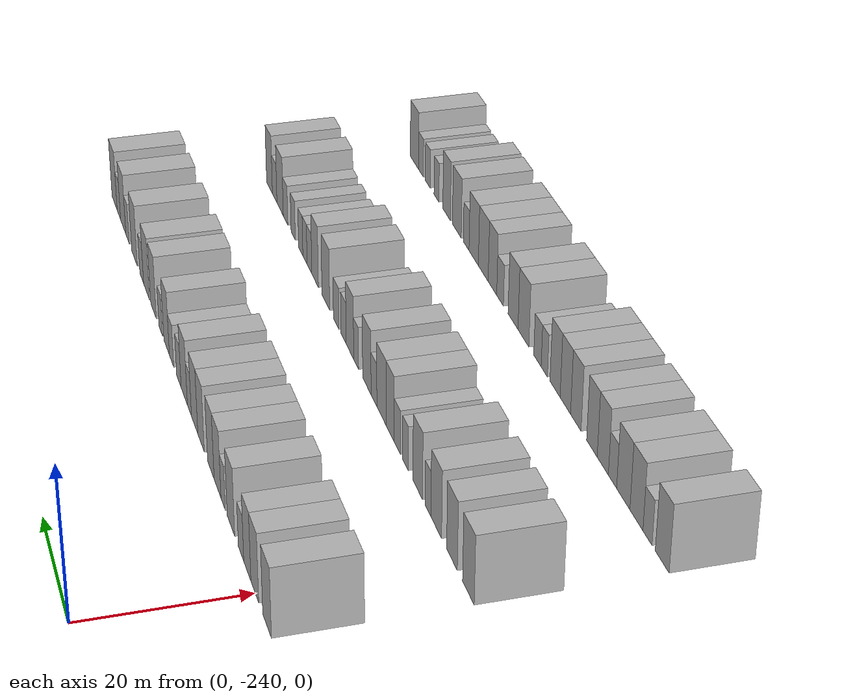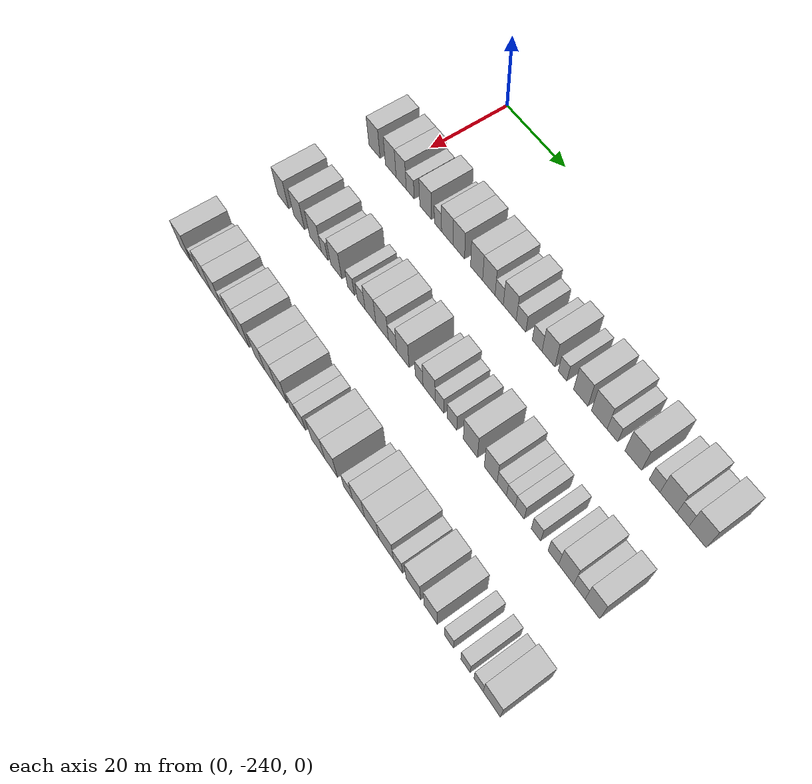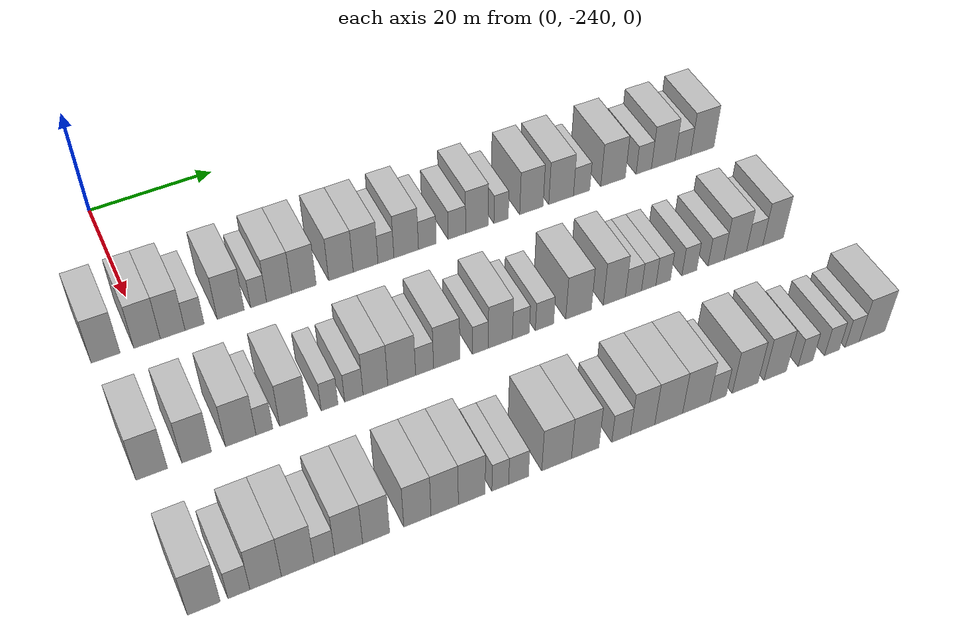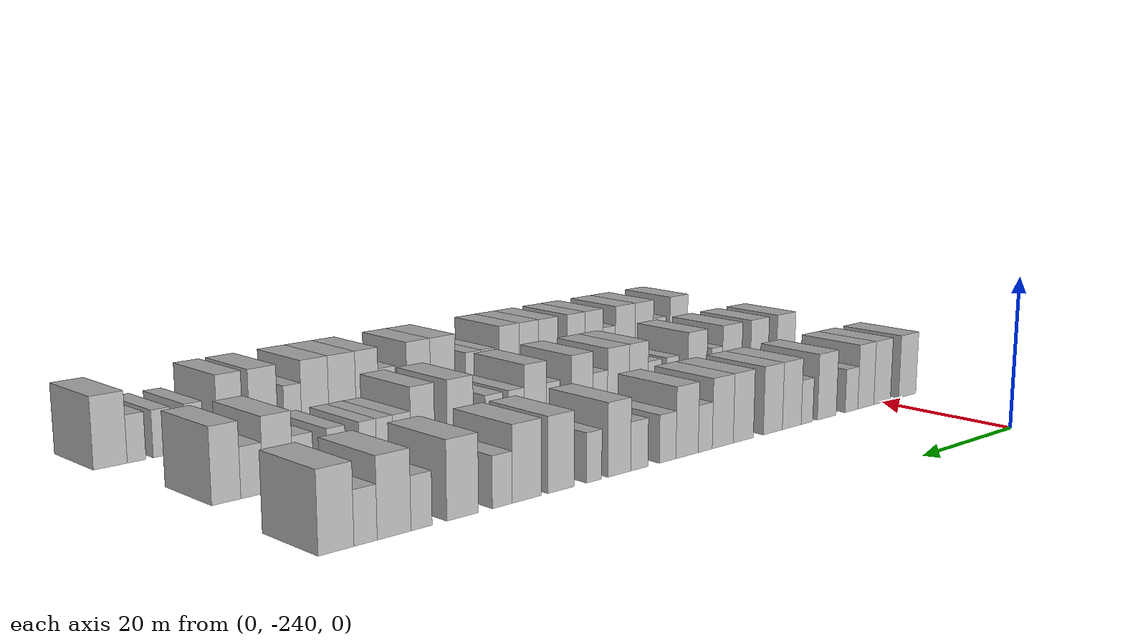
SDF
<sdf version="1.6">
 <world name="default">
  <model name="building_1">
   <static>1</static>
   <pose>25.0000 -245.8805 0 0.000000 0.000000 0.000000</pose>
   <link name="link">
    <pose>0 0 4.50 0 0 0</pose>
    <collision name="collision"><geometry><box><size>10.0000 4.2390 9.0000</size></box></geometry></collision>
    <visual name="visual">
     <cast_shadows>0</cast_shadows>
     <geometry><box><size>10.0000 4.2390 9.0000</size></box></geometry>
     <material>
      <script>
       <uri>model://HANNAS_wall/materials/scripts</uri>
       <uri>model://HANNAS_wall/materials/textures</uri>
       <name>vrc/HANNAS_wall</name>
      </script>
     </material>
    </visual>
   </link>
  </model>
  <model name="building_2">
   <static>1</static>
   <pose>25.0000 -239.7748 0 0.000000 0.000000 0.000000</pose>
   <link name="link">
    <pose>0 0 4.50 0 0 0</pose>
    <collision name="collision"><geometry><box><size>10.0000 3.9724 9.0000</size></box></geometry></collision>
    <visual name="visual">
     <cast_shadows>0</cast_shadows>
     <geometry><box><size>10.0000 3.9724 9.0000</size></box></geometry>
     <material>
      <script>
       <uri>model://HANNAS_wall/materials/scripts</uri>
       <uri>model://HANNAS_wall/materials/textures</uri>
       <name>vrc/HANNAS_wall</name>
      </script>
     </material>
    </visual>
   </link>
  </model>
  <model name="building_3">
   <static>1</static>
   <pose>25.0000 -235.9279 0 0.000000 0.000000 0.000000</pose>
   <link name="link">
    <pose>0 0 4.50 0 0 0</pose>
    <collision name="collision"><geometry><box><size>10.0000 3.7213 9.0000</size></box></geometry></collision>
    <visual name="visual">
     <cast_shadows>0</cast_shadows>
     <geometry><box><size>10.0000 3.7213 9.0000</size></box></geometry>
     <material>
      <script>
       <uri>model://HANNAS_wall/materials/scripts</uri>
       <uri>model://HANNAS_wall/materials/textures</uri>
       <name>vrc/HANNAS_wall</name>
      </script>
     </material>
    </visual>
   </link>
  </model>
  <model name="building_4">
   <static>1</static>
   <pose>25.0000 -232.6269 0 0.000000 0.000000 0.000000</pose>
   <link name="link">
    <pose>0 0 3.00 0 0 0</pose>
    <collision name="collision"><geometry><box><size>10.0000 2.8807 6.0000</size></box></geometry></collision>
    <visual name="visual">
     <cast_shadows>0</cast_shadows>
     <geometry><box><size>10.0000 2.8807 6.0000</size></box></geometry>
     <material>
      <script>
       <uri>model://HANNAS_wall/materials/scripts</uri>
       <uri>model://HANNAS_wall/materials/textures</uri>
       <name>vrc/HANNAS_wall</name>
      </script>
     </material>
    </visual>
   </link>
  </model>
  <model name="building_5">
   <static>1</static>
   <pose>25.0000 -227.1086 0 0.000000 0.000000 0.000000</pose>
   <link name="link">
    <pose>0 0 4.50 0 0 0</pose>
    <collision name="collision"><geometry><box><size>10.0000 4.1559 9.0000</size></box></geometry></collision>
    <visual name="visual">
     <cast_shadows>0</cast_shadows>
     <geometry><box><size>10.0000 4.1559 9.0000</size></box></geometry>
     <material>
      <script>
       <uri>model://HANNAS_wall/materials/scripts</uri>
       <uri>model://HANNAS_wall/materials/textures</uri>
       <name>vrc/HANNAS_wall</name>
      </script>
     </material>
    </visual>
   </link>
  </model>
  <model name="building_6">
   <static>1</static>
   <pose>25.0000 -222.7845 0 0.000000 0.000000 0.000000</pose>
   <link name="link">
    <pose>0 0 3.00 0 0 0</pose>
    <collision name="collision"><geometry><box><size>10.0000 2.4924 6.0000</size></box></geometry></collision>
    <visual name="visual">
     <cast_shadows>0</cast_shadows>
     <geometry><box><size>10.0000 2.4924 6.0000</size></box></geometry>
     <material>
      <script>
       <uri>model://HANNAS_wall/materials/scripts</uri>
       <uri>model://HANNAS_wall/materials/textures</uri>
       <name>vrc/HANNAS_wall</name>
      </script>
     </material>
    </visual>
   </link>
  </model>
  <model name="building_7">
   <static>1</static>
   <pose>25.0000 -219.5616 0 0.000000 0.000000 0.000000</pose>
   <link name="link">
    <pose>0 0 4.50 0 0 0</pose>
    <collision name="collision"><geometry><box><size>10.0000 3.9534 9.0000</size></box></geometry></collision>
    <visual name="visual">
     <cast_shadows>0</cast_shadows>
     <geometry><box><size>10.0000 3.9534 9.0000</size></box></geometry>
     <material>
      <script>
       <uri>model://HANNAS_wall/materials/scripts</uri>
       <uri>model://HANNAS_wall/materials/textures</uri>
       <name>vrc/HANNAS_wall</name>
      </script>
     </material>
    </visual>
   </link>
  </model>
  <model name="building_8">
   <static>1</static>
   <pose>25.0000 -215.6390 0 0.000000 0.000000 0.000000</pose>
   <link name="link">
    <pose>0 0 4.50 0 0 0</pose>
    <collision name="collision"><geometry><box><size>10.0000 3.8917 9.0000</size></box></geometry></collision>
    <visual name="visual">
     <cast_shadows>0</cast_shadows>
     <geometry><box><size>10.0000 3.8917 9.0000</size></box></geometry>
     <material>
      <script>
       <uri>model://HANNAS_wall/materials/scripts</uri>
       <uri>model://HANNAS_wall/materials/textures</uri>
       <name>vrc/HANNAS_wall</name>
      </script>
     </material>
    </visual>
   </link>
  </model>
  <model name="building_9">
   <static>1</static>
   <pose>25.0000 -209.7073 0 0.000000 0.000000 0.000000</pose>
   <link name="link">
    <pose>0 0 4.50 0 0 0</pose>
    <collision name="collision"><geometry><box><size>10.0000 3.9717 9.0000</size></box></geometry></collision>
    <visual name="visual">
     <cast_shadows>0</cast_shadows>
     <geometry><box><size>10.0000 3.9717 9.0000</size></box></geometry>
     <material>
      <script>
       <uri>model://HANNAS_wall/materials/scripts</uri>
       <uri>model://HANNAS_wall/materials/textures</uri>
       <name>vrc/HANNAS_wall</name>
      </script>
     </material>
    </visual>
   </link>
  </model>
  <model name="building_10">
   <static>1</static>
   <pose>25.0000 -205.7023 0 0.000000 0.000000 0.000000</pose>
   <link name="link">
    <pose>0 0 4.50 0 0 0</pose>
    <collision name="collision"><geometry><box><size>10.0000 4.0384 9.0000</size></box></geometry></collision>
    <visual name="visual">
     <cast_shadows>0</cast_shadows>
     <geometry><box><size>10.0000 4.0384 9.0000</size></box></geometry>
     <material>
      <script>
       <uri>model://HANNAS_wall/materials/scripts</uri>
       <uri>model://HANNAS_wall/materials/textures</uri>
       <name>vrc/HANNAS_wall</name>
      </script>
     </material>
    </visual>
   </link>
  </model>
  <model name="building_11">
   <static>1</static>
   <pose>25.0000 -202.3700 0 0.000000 0.000000 0.000000</pose>
   <link name="link">
    <pose>0 0 3.00 0 0 0</pose>
    <collision name="collision"><geometry><box><size>10.0000 2.6262 6.0000</size></box></geometry></collision>
    <visual name="visual">
     <cast_shadows>0</cast_shadows>
     <geometry><box><size>10.0000 2.6262 6.0000</size></box></geometry>
     <material>
      <script>
       <uri>model://HANNAS_wall/materials/scripts</uri>
       <uri>model://HANNAS_wall/materials/textures</uri>
       <name>vrc/HANNAS_wall</name>
      </script>
     </material>
    </visual>
   </link>
  </model>
  <model name="building_12">
   <static>1</static>
   <pose>25.0000 -199.0127 0 0.000000 0.000000 0.000000</pose>
   <link name="link">
    <pose>0 0 4.50 0 0 0</pose>
    <collision name="collision"><geometry><box><size>10.0000 4.0882 9.0000</size></box></geometry></collision>
    <visual name="visual">
     <cast_shadows>0</cast_shadows>
     <geometry><box><size>10.0000 4.0882 9.0000</size></box></geometry>
     <material>
      <script>
       <uri>model://HANNAS_wall/materials/scripts</uri>
       <uri>model://HANNAS_wall/materials/textures</uri>
       <name>vrc/HANNAS_wall</name>
      </script>
     </material>
    </visual>
   </link>
  </model>
  <model name="building_13">
   <static>1</static>
   <pose>25.0000 -195.4758 0 0.000000 0.000000 0.000000</pose>
   <link name="link">
    <pose>0 0 3.00 0 0 0</pose>
    <collision name="collision"><geometry><box><size>10.0000 2.9857 6.0000</size></box></geometry></collision>
    <visual name="visual">
     <cast_shadows>0</cast_shadows>
     <geometry><box><size>10.0000 2.9857 6.0000</size></box></geometry>
     <material>
      <script>
       <uri>model://HANNAS_wall/materials/scripts</uri>
       <uri>model://HANNAS_wall/materials/textures</uri>
       <name>vrc/HANNAS_wall</name>
      </script>
     </material>
    </visual>
   </link>
  </model>
  <model name="building_14">
   <static>1</static>
   <pose>25.0000 -190.4955 0 0.000000 0.000000 0.000000</pose>
   <link name="link">
    <pose>0 0 3.00 0 0 0</pose>
    <collision name="collision"><geometry><box><size>10.0000 2.9749 6.0000</size></box></geometry></collision>
    <visual name="visual">
     <cast_shadows>0</cast_shadows>
     <geometry><box><size>10.0000 2.9749 6.0000</size></box></geometry>
     <material>
      <script>
       <uri>model://HANNAS_wall/materials/scripts</uri>
       <uri>model://HANNAS_wall/materials/textures</uri>
       <name>vrc/HANNAS_wall</name>
      </script>
     </material>
    </visual>
   </link>
  </model>
  <model name="building_15">
   <static>1</static>
   <pose>25.0000 -187.0728 0 0.000000 0.000000 0.000000</pose>
   <link name="link">
    <pose>0 0 4.50 0 0 0</pose>
    <collision name="collision"><geometry><box><size>10.0000 3.8704 9.0000</size></box></geometry></collision>
    <visual name="visual">
     <cast_shadows>0</cast_shadows>
     <geometry><box><size>10.0000 3.8704 9.0000</size></box></geometry>
     <material>
      <script>
       <uri>model://HANNAS_wall/materials/scripts</uri>
       <uri>model://HANNAS_wall/materials/textures</uri>
       <name>vrc/HANNAS_wall</name>
      </script>
     </material>
    </visual>
   </link>
  </model>
  <model name="building_16">
   <static>1</static>
   <pose>25.0000 -182.8939 0 0.000000 0.000000 0.000000</pose>
   <link name="link">
    <pose>0 0 3.00 0 0 0</pose>
    <collision name="collision"><geometry><box><size>10.0000 2.4874 6.0000</size></box></geometry></collision>
    <visual name="visual">
     <cast_shadows>0</cast_shadows>
     <geometry><box><size>10.0000 2.4874 6.0000</size></box></geometry>
     <material>
      <script>
       <uri>model://HANNAS_wall/materials/scripts</uri>
       <uri>model://HANNAS_wall/materials/textures</uri>
       <name>vrc/HANNAS_wall</name>
      </script>
     </material>
    </visual>
   </link>
  </model>
  <model name="building_17">
   <static>1</static>
   <pose>25.0000 -177.5902 0 0.000000 0.000000 0.000000</pose>
   <link name="link">
    <pose>0 0 4.50 0 0 0</pose>
    <collision name="collision"><geometry><box><size>10.0000 4.1200 9.0000</size></box></geometry></collision>
    <visual name="visual">
     <cast_shadows>0</cast_shadows>
     <geometry><box><size>10.0000 4.1200 9.0000</size></box></geometry>
     <material>
      <script>
       <uri>model://HANNAS_wall/materials/scripts</uri>
       <uri>model://HANNAS_wall/materials/textures</uri>
       <name>vrc/HANNAS_wall</name>
      </script>
     </material>
    </visual>
   </link>
  </model>
  <model name="building_18">
   <static>1</static>
   <pose>25.0000 -172.3261 0 0.000000 0.000000 0.000000</pose>
   <link name="link">
    <pose>0 0 4.50 0 0 0</pose>
    <collision name="collision"><geometry><box><size>10.0000 4.4082 9.0000</size></box></geometry></collision>
    <visual name="visual">
     <cast_shadows>0</cast_shadows>
     <geometry><box><size>10.0000 4.4082 9.0000</size></box></geometry>
     <material>
      <script>
       <uri>model://HANNAS_wall/materials/scripts</uri>
       <uri>model://HANNAS_wall/materials/textures</uri>
       <name>vrc/HANNAS_wall</name>
      </script>
     </material>
    </visual>
   </link>
  </model>
  <model name="building_19">
   <static>1</static>
   <pose>25.0000 -168.6537 0 0.000000 0.000000 0.000000</pose>
   <link name="link">
    <pose>0 0 3.00 0 0 0</pose>
    <collision name="collision"><geometry><box><size>10.0000 2.9368 6.0000</size></box></geometry></collision>
    <visual name="visual">
     <cast_shadows>0</cast_shadows>
     <geometry><box><size>10.0000 2.9368 6.0000</size></box></geometry>
     <material>
      <script>
       <uri>model://HANNAS_wall/materials/scripts</uri>
       <uri>model://HANNAS_wall/materials/textures</uri>
       <name>vrc/HANNAS_wall</name>
      </script>
     </material>
    </visual>
   </link>
  </model>
  <model name="building_20">
   <static>1</static>
   <pose>25.0000 -162.9495 0 0.000000 0.000000 0.000000</pose>
   <link name="link">
    <pose>0 0 4.50 0 0 0</pose>
    <collision name="collision"><geometry><box><size>10.0000 4.4717 9.0000</size></box></geometry></collision>
    <visual name="visual">
     <cast_shadows>0</cast_shadows>
     <geometry><box><size>10.0000 4.4717 9.0000</size></box></geometry>
     <material>
      <script>
       <uri>model://HANNAS_wall/materials/scripts</uri>
       <uri>model://HANNAS_wall/materials/textures</uri>
       <name>vrc/HANNAS_wall</name>
      </script>
     </material>
    </visual>
   </link>
  </model>
  <model name="building_21">
   <static>1</static>
   <pose>25.0000 -157.2879 0 0.000000 0.000000 0.000000</pose>
   <link name="link">
    <pose>0 0 3.00 0 0 0</pose>
    <collision name="collision"><geometry><box><size>10.0000 2.8514 6.0000</size></box></geometry></collision>
    <visual name="visual">
     <cast_shadows>0</cast_shadows>
     <geometry><box><size>10.0000 2.8514 6.0000</size></box></geometry>
     <material>
      <script>
       <uri>model://HANNAS_wall/materials/scripts</uri>
       <uri>model://HANNAS_wall/materials/textures</uri>
       <name>vrc/HANNAS_wall</name>
      </script>
     </material>
    </visual>
   </link>
  </model>
  <model name="building_22">
   <static>1</static>
   <pose>25.0000 -153.6557 0 0.000000 0.000000 0.000000</pose>
   <link name="link">
    <pose>0 0 4.50 0 0 0</pose>
    <collision name="collision"><geometry><box><size>10.0000 4.4130 9.0000</size></box></geometry></collision>
    <visual name="visual">
     <cast_shadows>0</cast_shadows>
     <geometry><box><size>10.0000 4.4130 9.0000</size></box></geometry>
     <material>
      <script>
       <uri>model://HANNAS_wall/materials/scripts</uri>
       <uri>model://HANNAS_wall/materials/textures</uri>
       <name>vrc/HANNAS_wall</name>
      </script>
     </material>
    </visual>
   </link>
  </model>
  <model name="building_23">
   <static>1</static>
   <pose>25.0000 -149.9778 0 0.000000 0.000000 0.000000</pose>
   <link name="link">
    <pose>0 0 3.00 0 0 0</pose>
    <collision name="collision"><geometry><box><size>10.0000 2.9429 6.0000</size></box></geometry></collision>
    <visual name="visual">
     <cast_shadows>0</cast_shadows>
     <geometry><box><size>10.0000 2.9429 6.0000</size></box></geometry>
     <material>
      <script>
       <uri>model://HANNAS_wall/materials/scripts</uri>
       <uri>model://HANNAS_wall/materials/textures</uri>
       <name>vrc/HANNAS_wall</name>
      </script>
     </material>
    </visual>
   </link>
  </model>
  <model name="building_24">
   <static>1</static>
   <pose>25.0000 -146.2924 0 0.000000 0.000000 0.000000</pose>
   <link name="link">
    <pose>0 0 4.50 0 0 0</pose>
    <collision name="collision"><geometry><box><size>10.0000 4.4278 9.0000</size></box></geometry></collision>
    <visual name="visual">
     <cast_shadows>0</cast_shadows>
     <geometry><box><size>10.0000 4.4278 9.0000</size></box></geometry>
     <material>
      <script>
       <uri>model://HANNAS_wall/materials/scripts</uri>
       <uri>model://HANNAS_wall/materials/textures</uri>
       <name>vrc/HANNAS_wall</name>
      </script>
     </material>
    </visual>
   </link>
  </model>
  <model name="building_124">
   <static>1</static>
   <pose>47.0000 -245.8180 0 0.000000 0.000000 0.000000</pose>
   <link name="link">
    <pose>0 0 4.50 0 0 0</pose>
    <collision name="collision"><geometry><box><size>10.0000 4.3641 9.0000</size></box></geometry></collision>
    <visual name="visual">
     <cast_shadows>0</cast_shadows>
     <geometry><box><size>10.0000 4.3641 9.0000</size></box></geometry>
     <material>
      <script>
       <uri>model://HANNAS_wall/materials/scripts</uri>
       <uri>model://HANNAS_wall/materials/textures</uri>
       <name>vrc/HANNAS_wall</name>
      </script>
     </material>
    </visual>
   </link>
  </model>
  <model name="building_125">
   <static>1</static>
   <pose>47.0000 -239.5581 0 0.000000 0.000000 0.000000</pose>
   <link name="link">
    <pose>0 0 4.50 0 0 0</pose>
    <collision name="collision"><geometry><box><size>10.0000 4.1557 9.0000</size></box></geometry></collision>
    <visual name="visual">
     <cast_shadows>0</cast_shadows>
     <geometry><box><size>10.0000 4.1557 9.0000</size></box></geometry>
     <material>
      <script>
       <uri>model://HANNAS_wall/materials/scripts</uri>
       <uri>model://HANNAS_wall/materials/textures</uri>
       <name>vrc/HANNAS_wall</name>
      </script>
     </material>
    </visual>
   </link>
  </model>
  <model name="building_126">
   <static>1</static>
   <pose>47.0000 -233.2970 0 0.000000 0.000000 0.000000</pose>
   <link name="link">
    <pose>0 0 4.50 0 0 0</pose>
    <collision name="collision"><geometry><box><size>10.0000 4.3665 9.0000</size></box></geometry></collision>
    <visual name="visual">
     <cast_shadows>0</cast_shadows>
     <geometry><box><size>10.0000 4.3665 9.0000</size></box></geometry>
     <material>
      <script>
       <uri>model://HANNAS_wall/materials/scripts</uri>
       <uri>model://HANNAS_wall/materials/textures</uri>
       <name>vrc/HANNAS_wall</name>
      </script>
     </material>
    </visual>
   </link>
  </model>
  <model name="building_127">
   <static>1</static>
   <pose>47.0000 -229.8968 0 0.000000 0.000000 0.000000</pose>
   <link name="link">
    <pose>0 0 3.00 0 0 0</pose>
    <collision name="collision"><geometry><box><size>10.0000 2.4340 6.0000</size></box></geometry></collision>
    <visual name="visual">
     <cast_shadows>0</cast_shadows>
     <geometry><box><size>10.0000 2.4340 6.0000</size></box></geometry>
     <material>
      <script>
       <uri>model://HANNAS_wall/materials/scripts</uri>
       <uri>model://HANNAS_wall/materials/textures</uri>
       <name>vrc/HANNAS_wall</name>
      </script>
     </material>
    </visual>
   </link>
  </model>
  <model name="building_128">
   <static>1</static>
   <pose>47.0000 -225.6311 0 0.000000 0.000000 0.000000</pose>
   <link name="link">
    <pose>0 0 4.50 0 0 0</pose>
    <collision name="collision"><geometry><box><size>10.0000 4.0974 9.0000</size></box></geometry></collision>
    <visual name="visual">
     <cast_shadows>0</cast_shadows>
     <geometry><box><size>10.0000 4.0974 9.0000</size></box></geometry>
     <material>
      <script>
       <uri>model://HANNAS_wall/materials/scripts</uri>
       <uri>model://HANNAS_wall/materials/textures</uri>
       <name>vrc/HANNAS_wall</name>
      </script>
     </material>
    </visual>
   </link>
  </model>
  <model name="building_129">
   <static>1</static>
   <pose>47.0000 -220.3330 0 0.000000 0.000000 0.000000</pose>
   <link name="link">
    <pose>0 0 3.00 0 0 0</pose>
    <collision name="collision"><geometry><box><size>10.0000 2.4988 6.0000</size></box></geometry></collision>
    <visual name="visual">
     <cast_shadows>0</cast_shadows>
     <geometry><box><size>10.0000 2.4988 6.0000</size></box></geometry>
     <material>
      <script>
       <uri>model://HANNAS_wall/materials/scripts</uri>
       <uri>model://HANNAS_wall/materials/textures</uri>
       <name>vrc/HANNAS_wall</name>
      </script>
     </material>
    </visual>
   </link>
  </model>
  <model name="building_130">
   <static>1</static>
   <pose>47.0000 -216.7002 0 0.000000 0.000000 0.000000</pose>
   <link name="link">
    <pose>0 0 3.00 0 0 0</pose>
    <collision name="collision"><geometry><box><size>10.0000 2.7667 6.0000</size></box></geometry></collision>
    <visual name="visual">
     <cast_shadows>0</cast_shadows>
     <geometry><box><size>10.0000 2.7667 6.0000</size></box></geometry>
     <material>
      <script>
       <uri>model://HANNAS_wall/materials/scripts</uri>
       <uri>model://HANNAS_wall/materials/textures</uri>
       <name>vrc/HANNAS_wall</name>
      </script>
     </material>
    </visual>
   </link>
  </model>
  <model name="building_131">
   <static>1</static>
   <pose>47.0000 -213.4390 0 0.000000 0.000000 0.000000</pose>
   <link name="link">
    <pose>0 0 4.50 0 0 0</pose>
    <collision name="collision"><geometry><box><size>10.0000 3.7558 9.0000</size></box></geometry></collision>
    <visual name="visual">
     <cast_shadows>0</cast_shadows>
     <geometry><box><size>10.0000 3.7558 9.0000</size></box></geometry>
     <material>
      <script>
       <uri>model://HANNAS_wall/materials/scripts</uri>
       <uri>model://HANNAS_wall/materials/textures</uri>
       <name>vrc/HANNAS_wall</name>
      </script>
     </material>
    </visual>
   </link>
  </model>
  <model name="building_132">
   <static>1</static>
   <pose>47.0000 -209.4203 0 0.000000 0.000000 0.000000</pose>
   <link name="link">
    <pose>0 0 4.50 0 0 0</pose>
    <collision name="collision"><geometry><box><size>10.0000 4.2815 9.0000</size></box></geometry></collision>
    <visual name="visual">
     <cast_shadows>0</cast_shadows>
     <geometry><box><size>10.0000 4.2815 9.0000</size></box></geometry>
     <material>
      <script>
       <uri>model://HANNAS_wall/materials/scripts</uri>
       <uri>model://HANNAS_wall/materials/textures</uri>
       <name>vrc/HANNAS_wall</name>
      </script>
     </material>
    </visual>
   </link>
  </model>
  <model name="building_133">
   <static>1</static>
   <pose>47.0000 -205.8886 0 0.000000 0.000000 0.000000</pose>
   <link name="link">
    <pose>0 0 3.00 0 0 0</pose>
    <collision name="collision"><geometry><box><size>10.0000 2.7819 6.0000</size></box></geometry></collision>
    <visual name="visual">
     <cast_shadows>0</cast_shadows>
     <geometry><box><size>10.0000 2.7819 6.0000</size></box></geometry>
     <material>
      <script>
       <uri>model://HANNAS_wall/materials/scripts</uri>
       <uri>model://HANNAS_wall/materials/textures</uri>
       <name>vrc/HANNAS_wall</name>
      </script>
     </material>
    </visual>
   </link>
  </model>
  <model name="building_134">
   <static>1</static>
   <pose>47.0000 -202.4421 0 0.000000 0.000000 0.000000</pose>
   <link name="link">
    <pose>0 0 4.50 0 0 0</pose>
    <collision name="collision"><geometry><box><size>10.0000 4.1111 9.0000</size></box></geometry></collision>
    <visual name="visual">
     <cast_shadows>0</cast_shadows>
     <geometry><box><size>10.0000 4.1111 9.0000</size></box></geometry>
     <material>
      <script>
       <uri>model://HANNAS_wall/materials/scripts</uri>
       <uri>model://HANNAS_wall/materials/textures</uri>
       <name>vrc/HANNAS_wall</name>
      </script>
     </material>
    </visual>
   </link>
  </model>
  <model name="building_135">
   <static>1</static>
   <pose>47.0000 -197.1403 0 0.000000 0.000000 0.000000</pose>
   <link name="link">
    <pose>0 0 3.00 0 0 0</pose>
    <collision name="collision"><geometry><box><size>10.0000 2.4924 6.0000</size></box></geometry></collision>
    <visual name="visual">
     <cast_shadows>0</cast_shadows>
     <geometry><box><size>10.0000 2.4924 6.0000</size></box></geometry>
     <material>
      <script>
       <uri>model://HANNAS_wall/materials/scripts</uri>
       <uri>model://HANNAS_wall/materials/textures</uri>
       <name>vrc/HANNAS_wall</name>
      </script>
     </material>
    </visual>
   </link>
  </model>
  <model name="building_136">
   <static>1</static>
   <pose>47.0000 -193.9476 0 0.000000 0.000000 0.000000</pose>
   <link name="link">
    <pose>0 0 4.50 0 0 0</pose>
    <collision name="collision"><geometry><box><size>10.0000 3.8930 9.0000</size></box></geometry></collision>
    <visual name="visual">
     <cast_shadows>0</cast_shadows>
     <geometry><box><size>10.0000 3.8930 9.0000</size></box></geometry>
     <material>
      <script>
       <uri>model://HANNAS_wall/materials/scripts</uri>
       <uri>model://HANNAS_wall/materials/textures</uri>
       <name>vrc/HANNAS_wall</name>
      </script>
     </material>
    </visual>
   </link>
  </model>
  <model name="building_137">
   <static>1</static>
   <pose>47.0000 -190.6385 0 0.000000 0.000000 0.000000</pose>
   <link name="link">
    <pose>0 0 3.00 0 0 0</pose>
    <collision name="collision"><geometry><box><size>10.0000 2.7252 6.0000</size></box></geometry></collision>
    <visual name="visual">
     <cast_shadows>0</cast_shadows>
     <geometry><box><size>10.0000 2.7252 6.0000</size></box></geometry>
     <material>
      <script>
       <uri>model://HANNAS_wall/materials/scripts</uri>
       <uri>model://HANNAS_wall/materials/textures</uri>
       <name>vrc/HANNAS_wall</name>
      </script>
     </material>
    </visual>
   </link>
  </model>
  <model name="building_138">
   <static>1</static>
   <pose>47.0000 -186.7793 0 0.000000 0.000000 0.000000</pose>
   <link name="link">
    <pose>0 0 3.00 0 0 0</pose>
    <collision name="collision"><geometry><box><size>10.0000 2.9932 6.0000</size></box></geometry></collision>
    <visual name="visual">
     <cast_shadows>0</cast_shadows>
     <geometry><box><size>10.0000 2.9932 6.0000</size></box></geometry>
     <material>
      <script>
       <uri>model://HANNAS_wall/materials/scripts</uri>
       <uri>model://HANNAS_wall/materials/textures</uri>
       <name>vrc/HANNAS_wall</name>
      </script>
     </material>
    </visual>
   </link>
  </model>
  <model name="building_139">
   <static>1</static>
   <pose>47.0000 -181.1474 0 0.000000 0.000000 0.000000</pose>
   <link name="link">
    <pose>0 0 4.50 0 0 0</pose>
    <collision name="collision"><geometry><box><size>10.0000 4.2706 9.0000</size></box></geometry></collision>
    <visual name="visual">
     <cast_shadows>0</cast_shadows>
     <geometry><box><size>10.0000 4.2706 9.0000</size></box></geometry>
     <material>
      <script>
       <uri>model://HANNAS_wall/materials/scripts</uri>
       <uri>model://HANNAS_wall/materials/textures</uri>
       <name>vrc/HANNAS_wall</name>
      </script>
     </material>
    </visual>
   </link>
  </model>
  <model name="building_140">
   <static>1</static>
   <pose>47.0000 -175.1363 0 0.000000 0.000000 0.000000</pose>
   <link name="link">
    <pose>0 0 4.50 0 0 0</pose>
    <collision name="collision"><geometry><box><size>10.0000 3.7517 9.0000</size></box></geometry></collision>
    <visual name="visual">
     <cast_shadows>0</cast_shadows>
     <geometry><box><size>10.0000 3.7517 9.0000</size></box></geometry>
     <material>
      <script>
       <uri>model://HANNAS_wall/materials/scripts</uri>
       <uri>model://HANNAS_wall/materials/textures</uri>
       <name>vrc/HANNAS_wall</name>
      </script>
     </material>
    </visual>
   </link>
  </model>
  <model name="building_141">
   <static>1</static>
   <pose>47.0000 -171.8887 0 0.000000 0.000000 0.000000</pose>
   <link name="link">
    <pose>0 0 3.00 0 0 0</pose>
    <collision name="collision"><geometry><box><size>10.0000 2.7435 6.0000</size></box></geometry></collision>
    <visual name="visual">
     <cast_shadows>0</cast_shadows>
     <geometry><box><size>10.0000 2.7435 6.0000</size></box></geometry>
     <material>
      <script>
       <uri>model://HANNAS_wall/materials/scripts</uri>
       <uri>model://HANNAS_wall/materials/textures</uri>
       <name>vrc/HANNAS_wall</name>
      </script>
     </material>
    </visual>
   </link>
  </model>
  <model name="building_142">
   <static>1</static>
   <pose>47.0000 -169.2757 0 0.000000 0.000000 0.000000</pose>
   <link name="link">
    <pose>0 0 3.00 0 0 0</pose>
    <collision name="collision"><geometry><box><size>10.0000 2.4826 6.0000</size></box></geometry></collision>
    <visual name="visual">
     <cast_shadows>0</cast_shadows>
     <geometry><box><size>10.0000 2.4826 6.0000</size></box></geometry>
     <material>
      <script>
       <uri>model://HANNAS_wall/materials/scripts</uri>
       <uri>model://HANNAS_wall/materials/textures</uri>
       <name>vrc/HANNAS_wall</name>
      </script>
     </material>
    </visual>
   </link>
  </model>
  <model name="building_143">
   <static>1</static>
   <pose>47.0000 -166.7747 0 0.000000 0.000000 0.000000</pose>
   <link name="link">
    <pose>0 0 3.00 0 0 0</pose>
    <collision name="collision"><geometry><box><size>10.0000 2.5194 6.0000</size></box></geometry></collision>
    <visual name="visual">
     <cast_shadows>0</cast_shadows>
     <geometry><box><size>10.0000 2.5194 6.0000</size></box></geometry>
     <material>
      <script>
       <uri>model://HANNAS_wall/materials/scripts</uri>
       <uri>model://HANNAS_wall/materials/textures</uri>
       <name>vrc/HANNAS_wall</name>
      </script>
     </material>
    </visual>
   </link>
  </model>
  <model name="building_144">
   <static>1</static>
   <pose>47.0000 -162.2188 0 0.000000 0.000000 0.000000</pose>
   <link name="link">
    <pose>0 0 3.00 0 0 0</pose>
    <collision name="collision"><geometry><box><size>10.0000 2.5922 6.0000</size></box></geometry></collision>
    <visual name="visual">
     <cast_shadows>0</cast_shadows>
     <geometry><box><size>10.0000 2.5922 6.0000</size></box></geometry>
     <material>
      <script>
       <uri>model://HANNAS_wall/materials/scripts</uri>
       <uri>model://HANNAS_wall/materials/textures</uri>
       <name>vrc/HANNAS_wall</name>
      </script>
     </material>
    </visual>
   </link>
  </model>
  <model name="building_145">
   <static>1</static>
   <pose>47.0000 -157.4969 0 0.000000 0.000000 0.000000</pose>
   <link name="link">
    <pose>0 0 3.00 0 0 0</pose>
    <collision name="collision"><geometry><box><size>10.0000 2.8517 6.0000</size></box></geometry></collision>
    <visual name="visual">
     <cast_shadows>0</cast_shadows>
     <geometry><box><size>10.0000 2.8517 6.0000</size></box></geometry>
     <material>
      <script>
       <uri>model://HANNAS_wall/materials/scripts</uri>
       <uri>model://HANNAS_wall/materials/textures</uri>
       <name>vrc/HANNAS_wall</name>
      </script>
     </material>
    </visual>
   </link>
  </model>
  <model name="building_146">
   <static>1</static>
   <pose>47.0000 -154.0555 0 0.000000 0.000000 0.000000</pose>
   <link name="link">
    <pose>0 0 4.50 0 0 0</pose>
    <collision name="collision"><geometry><box><size>10.0000 4.0310 9.0000</size></box></geometry></collision>
    <visual name="visual">
     <cast_shadows>0</cast_shadows>
     <geometry><box><size>10.0000 4.0310 9.0000</size></box></geometry>
     <material>
      <script>
       <uri>model://HANNAS_wall/materials/scripts</uri>
       <uri>model://HANNAS_wall/materials/textures</uri>
       <name>vrc/HANNAS_wall</name>
      </script>
     </material>
    </visual>
   </link>
  </model>
  <model name="building_147">
   <static>1</static>
   <pose>47.0000 -150.5668 0 0.000000 0.000000 0.000000</pose>
   <link name="link">
    <pose>0 0 3.00 0 0 0</pose>
    <collision name="collision"><geometry><box><size>10.0000 2.9465 6.0000</size></box></geometry></collision>
    <visual name="visual">
     <cast_shadows>0</cast_shadows>
     <geometry><box><size>10.0000 2.9465 6.0000</size></box></geometry>
     <material>
      <script>
       <uri>model://HANNAS_wall/materials/scripts</uri>
       <uri>model://HANNAS_wall/materials/textures</uri>
       <name>vrc/HANNAS_wall</name>
      </script>
     </material>
    </visual>
   </link>
  </model>
  <model name="building_148">
   <static>1</static>
   <pose>47.0000 -147.2103 0 0.000000 0.000000 0.000000</pose>
   <link name="link">
    <pose>0 0 4.50 0 0 0</pose>
    <collision name="collision"><geometry><box><size>10.0000 3.7665 9.0000</size></box></geometry></collision>
    <visual name="visual">
     <cast_shadows>0</cast_shadows>
     <geometry><box><size>10.0000 3.7665 9.0000</size></box></geometry>
     <material>
      <script>
       <uri>model://HANNAS_wall/materials/scripts</uri>
       <uri>model://HANNAS_wall/materials/textures</uri>
       <name>vrc/HANNAS_wall</name>
      </script>
     </material>
    </visual>
   </link>
  </model>
  <model name="building_244">
   <static>1</static>
   <pose>69.0000 -245.8683 0 0.000000 0.000000 0.000000</pose>
   <link name="link">
    <pose>0 0 4.50 0 0 0</pose>
    <collision name="collision"><geometry><box><size>10.0000 4.2634 9.0000</size></box></geometry></collision>
    <visual name="visual">
     <cast_shadows>0</cast_shadows>
     <geometry><box><size>10.0000 4.2634 9.0000</size></box></geometry>
     <material>
      <script>
       <uri>model://HANNAS_wall/materials/scripts</uri>
       <uri>model://HANNAS_wall/materials/textures</uri>
       <name>vrc/HANNAS_wall</name>
      </script>
     </material>
    </visual>
   </link>
  </model>
  <model name="building_245">
   <static>1</static>
   <pose>69.0000 -241.2928 0 0.000000 0.000000 0.000000</pose>
   <link name="link">
    <pose>0 0 3.00 0 0 0</pose>
    <collision name="collision"><geometry><box><size>10.0000 2.8877 6.0000</size></box></geometry></collision>
    <visual name="visual">
     <cast_shadows>0</cast_shadows>
     <geometry><box><size>10.0000 2.8877 6.0000</size></box></geometry>
     <material>
      <script>
       <uri>model://HANNAS_wall/materials/scripts</uri>
       <uri>model://HANNAS_wall/materials/textures</uri>
       <name>vrc/HANNAS_wall</name>
      </script>
     </material>
    </visual>
   </link>
  </model>
  <model name="building_246">
   <static>1</static>
   <pose>69.0000 -237.7418 0 0.000000 0.000000 0.000000</pose>
   <link name="link">
    <pose>0 0 4.50 0 0 0</pose>
    <collision name="collision"><geometry><box><size>10.0000 4.2141 9.0000</size></box></geometry></collision>
    <visual name="visual">
     <cast_shadows>0</cast_shadows>
     <geometry><box><size>10.0000 4.2141 9.0000</size></box></geometry>
     <material>
      <script>
       <uri>model://HANNAS_wall/materials/scripts</uri>
       <uri>model://HANNAS_wall/materials/textures</uri>
       <name>vrc/HANNAS_wall</name>
      </script>
     </material>
    </visual>
   </link>
  </model>
  <model name="building_247">
   <static>1</static>
   <pose>69.0000 -233.4308 0 0.000000 0.000000 0.000000</pose>
   <link name="link">
    <pose>0 0 4.50 0 0 0</pose>
    <collision name="collision"><geometry><box><size>10.0000 4.4080 9.0000</size></box></geometry></collision>
    <visual name="visual">
     <cast_shadows>0</cast_shadows>
     <geometry><box><size>10.0000 4.4080 9.0000</size></box></geometry>
     <material>
      <script>
       <uri>model://HANNAS_wall/materials/scripts</uri>
       <uri>model://HANNAS_wall/materials/textures</uri>
       <name>vrc/HANNAS_wall</name>
      </script>
     </material>
    </visual>
   </link>
  </model>
  <model name="building_248">
   <static>1</static>
   <pose>69.0000 -229.8237 0 0.000000 0.000000 0.000000</pose>
   <link name="link">
    <pose>0 0 3.00 0 0 0</pose>
    <collision name="collision"><geometry><box><size>10.0000 2.8063 6.0000</size></box></geometry></collision>
    <visual name="visual">
     <cast_shadows>0</cast_shadows>
     <geometry><box><size>10.0000 2.8063 6.0000</size></box></geometry>
     <material>
      <script>
       <uri>model://HANNAS_wall/materials/scripts</uri>
       <uri>model://HANNAS_wall/materials/textures</uri>
       <name>vrc/HANNAS_wall</name>
      </script>
     </material>
    </visual>
   </link>
  </model>
  <model name="building_249">
   <static>1</static>
   <pose>69.0000 -226.4863 0 0.000000 0.000000 0.000000</pose>
   <link name="link">
    <pose>0 0 4.50 0 0 0</pose>
    <collision name="collision"><geometry><box><size>10.0000 3.8685 9.0000</size></box></geometry></collision>
    <visual name="visual">
     <cast_shadows>0</cast_shadows>
     <geometry><box><size>10.0000 3.8685 9.0000</size></box></geometry>
     <material>
      <script>
       <uri>model://HANNAS_wall/materials/scripts</uri>
       <uri>model://HANNAS_wall/materials/textures</uri>
       <name>vrc/HANNAS_wall</name>
      </script>
     </material>
    </visual>
   </link>
  </model>
  <model name="building_250">
   <static>1</static>
   <pose>69.0000 -222.6763 0 0.000000 0.000000 0.000000</pose>
   <link name="link">
    <pose>0 0 4.50 0 0 0</pose>
    <collision name="collision"><geometry><box><size>10.0000 3.7515 9.0000</size></box></geometry></collision>
    <visual name="visual">
     <cast_shadows>0</cast_shadows>
     <geometry><box><size>10.0000 3.7515 9.0000</size></box></geometry>
     <material>
      <script>
       <uri>model://HANNAS_wall/materials/scripts</uri>
       <uri>model://HANNAS_wall/materials/textures</uri>
       <name>vrc/HANNAS_wall</name>
      </script>
     </material>
    </visual>
   </link>
  </model>
  <model name="building_251">
   <static>1</static>
   <pose>69.0000 -216.8632 0 0.000000 0.000000 0.000000</pose>
   <link name="link">
    <pose>0 0 4.50 0 0 0</pose>
    <collision name="collision"><geometry><box><size>10.0000 3.8747 9.0000</size></box></geometry></collision>
    <visual name="visual">
     <cast_shadows>0</cast_shadows>
     <geometry><box><size>10.0000 3.8747 9.0000</size></box></geometry>
     <material>
      <script>
       <uri>model://HANNAS_wall/materials/scripts</uri>
       <uri>model://HANNAS_wall/materials/textures</uri>
       <name>vrc/HANNAS_wall</name>
      </script>
     </material>
    </visual>
   </link>
  </model>
  <model name="building_252">
   <static>1</static>
   <pose>69.0000 -212.9599 0 0.000000 0.000000 0.000000</pose>
   <link name="link">
    <pose>0 0 4.50 0 0 0</pose>
    <collision name="collision"><geometry><box><size>10.0000 3.9319 9.0000</size></box></geometry></collision>
    <visual name="visual">
     <cast_shadows>0</cast_shadows>
     <geometry><box><size>10.0000 3.9319 9.0000</size></box></geometry>
     <material>
      <script>
       <uri>model://HANNAS_wall/materials/scripts</uri>
       <uri>model://HANNAS_wall/materials/textures</uri>
       <name>vrc/HANNAS_wall</name>
      </script>
     </material>
    </visual>
   </link>
  </model>
  <model name="building_253">
   <static>1</static>
   <pose>69.0000 -209.0469 0 0.000000 0.000000 0.000000</pose>
   <link name="link">
    <pose>0 0 4.50 0 0 0</pose>
    <collision name="collision"><geometry><box><size>10.0000 3.8942 9.0000</size></box></geometry></collision>
    <visual name="visual">
     <cast_shadows>0</cast_shadows>
     <geometry><box><size>10.0000 3.8942 9.0000</size></box></geometry>
     <material>
      <script>
       <uri>model://HANNAS_wall/materials/scripts</uri>
       <uri>model://HANNAS_wall/materials/textures</uri>
       <name>vrc/HANNAS_wall</name>
      </script>
     </material>
    </visual>
   </link>
  </model>
  <model name="building_254">
   <static>1</static>
   <pose>69.0000 -204.8655 0 0.000000 0.000000 0.000000</pose>
   <link name="link">
    <pose>0 0 3.00 0 0 0</pose>
    <collision name="collision"><geometry><box><size>10.0000 2.4684 6.0000</size></box></geometry></collision>
    <visual name="visual">
     <cast_shadows>0</cast_shadows>
     <geometry><box><size>10.0000 2.4684 6.0000</size></box></geometry>
     <material>
      <script>
       <uri>model://HANNAS_wall/materials/scripts</uri>
       <uri>model://HANNAS_wall/materials/textures</uri>
       <name>vrc/HANNAS_wall</name>
      </script>
     </material>
    </visual>
   </link>
  </model>
  <model name="building_255">
   <static>1</static>
   <pose>69.0000 -202.1532 0 0.000000 0.000000 0.000000</pose>
   <link name="link">
    <pose>0 0 3.00 0 0 0</pose>
    <collision name="collision"><geometry><box><size>10.0000 2.9562 6.0000</size></box></geometry></collision>
    <visual name="visual">
     <cast_shadows>0</cast_shadows>
     <geometry><box><size>10.0000 2.9562 6.0000</size></box></geometry>
     <material>
      <script>
       <uri>model://HANNAS_wall/materials/scripts</uri>
       <uri>model://HANNAS_wall/materials/textures</uri>
       <name>vrc/HANNAS_wall</name>
      </script>
     </material>
    </visual>
   </link>
  </model>
  <model name="building_256">
   <static>1</static>
   <pose>69.0000 -196.4255 0 0.000000 0.000000 0.000000</pose>
   <link name="link">
    <pose>0 0 4.50 0 0 0</pose>
    <collision name="collision"><geometry><box><size>10.0000 4.4993 9.0000</size></box></geometry></collision>
    <visual name="visual">
     <cast_shadows>0</cast_shadows>
     <geometry><box><size>10.0000 4.4993 9.0000</size></box></geometry>
     <material>
      <script>
       <uri>model://HANNAS_wall/materials/scripts</uri>
       <uri>model://HANNAS_wall/materials/textures</uri>
       <name>vrc/HANNAS_wall</name>
      </script>
     </material>
    </visual>
   </link>
  </model>
  <model name="building_257">
   <static>1</static>
   <pose>69.0000 -192.0732 0 0.000000 0.000000 0.000000</pose>
   <link name="link">
    <pose>0 0 4.50 0 0 0</pose>
    <collision name="collision"><geometry><box><size>10.0000 4.2054 9.0000</size></box></geometry></collision>
    <visual name="visual">
     <cast_shadows>0</cast_shadows>
     <geometry><box><size>10.0000 4.2054 9.0000</size></box></geometry>
     <material>
      <script>
       <uri>model://HANNAS_wall/materials/scripts</uri>
       <uri>model://HANNAS_wall/materials/textures</uri>
       <name>vrc/HANNAS_wall</name>
      </script>
     </material>
    </visual>
   </link>
  </model>
  <model name="building_258">
   <static>1</static>
   <pose>69.0000 -186.5054 0 0.000000 0.000000 0.000000</pose>
   <link name="link">
    <pose>0 0 3.00 0 0 0</pose>
    <collision name="collision"><geometry><box><size>10.0000 2.9300 6.0000</size></box></geometry></collision>
    <visual name="visual">
     <cast_shadows>0</cast_shadows>
     <geometry><box><size>10.0000 2.9300 6.0000</size></box></geometry>
     <material>
      <script>
       <uri>model://HANNAS_wall/materials/scripts</uri>
       <uri>model://HANNAS_wall/materials/textures</uri>
       <name>vrc/HANNAS_wall</name>
      </script>
     </material>
    </visual>
   </link>
  </model>
  <model name="building_259">
   <static>1</static>
   <pose>69.0000 -183.1318 0 0.000000 0.000000 0.000000</pose>
   <link name="link">
    <pose>0 0 4.50 0 0 0</pose>
    <collision name="collision"><geometry><box><size>10.0000 3.8173 9.0000</size></box></geometry></collision>
    <visual name="visual">
     <cast_shadows>0</cast_shadows>
     <geometry><box><size>10.0000 3.8173 9.0000</size></box></geometry>
     <material>
      <script>
       <uri>model://HANNAS_wall/materials/scripts</uri>
       <uri>model://HANNAS_wall/materials/textures</uri>
       <name>vrc/HANNAS_wall</name>
      </script>
     </material>
    </visual>
   </link>
  </model>
  <model name="building_260">
   <static>1</static>
   <pose>69.0000 -178.9987 0 0.000000 0.000000 0.000000</pose>
   <link name="link">
    <pose>0 0 4.50 0 0 0</pose>
    <collision name="collision"><geometry><box><size>10.0000 4.4488 9.0000</size></box></geometry></collision>
    <visual name="visual">
     <cast_shadows>0</cast_shadows>
     <geometry><box><size>10.0000 4.4488 9.0000</size></box></geometry>
     <material>
      <script>
       <uri>model://HANNAS_wall/materials/scripts</uri>
       <uri>model://HANNAS_wall/materials/textures</uri>
       <name>vrc/HANNAS_wall</name>
      </script>
     </material>
    </visual>
   </link>
  </model>
  <model name="building_261">
   <static>1</static>
   <pose>69.0000 -174.5909 0 0.000000 0.000000 0.000000</pose>
   <link name="link">
    <pose>0 0 4.50 0 0 0</pose>
    <collision name="collision"><geometry><box><size>10.0000 4.3669 9.0000</size></box></geometry></collision>
    <visual name="visual">
     <cast_shadows>0</cast_shadows>
     <geometry><box><size>10.0000 4.3669 9.0000</size></box></geometry>
     <material>
      <script>
       <uri>model://HANNAS_wall/materials/scripts</uri>
       <uri>model://HANNAS_wall/materials/textures</uri>
       <name>vrc/HANNAS_wall</name>
      </script>
     </material>
    </visual>
   </link>
  </model>
  <model name="building_262">
   <static>1</static>
   <pose>69.0000 -171.0480 0 0.000000 0.000000 0.000000</pose>
   <link name="link">
    <pose>0 0 3.00 0 0 0</pose>
    <collision name="collision"><geometry><box><size>10.0000 2.7187 6.0000</size></box></geometry></collision>
    <visual name="visual">
     <cast_shadows>0</cast_shadows>
     <geometry><box><size>10.0000 2.7187 6.0000</size></box></geometry>
     <material>
      <script>
       <uri>model://HANNAS_wall/materials/scripts</uri>
       <uri>model://HANNAS_wall/materials/textures</uri>
       <name>vrc/HANNAS_wall</name>
      </script>
     </material>
    </visual>
   </link>
  </model>
  <model name="building_263">
   <static>1</static>
   <pose>69.0000 -166.5508 0 0.000000 0.000000 0.000000</pose>
   <link name="link">
    <pose>0 0 4.50 0 0 0</pose>
    <collision name="collision"><geometry><box><size>10.0000 4.2758 9.0000</size></box></geometry></collision>
    <visual name="visual">
     <cast_shadows>0</cast_shadows>
     <geometry><box><size>10.0000 4.2758 9.0000</size></box></geometry>
     <material>
      <script>
       <uri>model://HANNAS_wall/materials/scripts</uri>
       <uri>model://HANNAS_wall/materials/textures</uri>
       <name>vrc/HANNAS_wall</name>
      </script>
     </material>
    </visual>
   </link>
  </model>
  <model name="building_264">
   <static>1</static>
   <pose>69.0000 -161.5329 0 0.000000 0.000000 0.000000</pose>
   <link name="link">
    <pose>0 0 4.50 0 0 0</pose>
    <collision name="collision"><geometry><box><size>10.0000 3.7600 9.0000</size></box></geometry></collision>
    <visual name="visual">
     <cast_shadows>0</cast_shadows>
     <geometry><box><size>10.0000 3.7600 9.0000</size></box></geometry>
     <material>
      <script>
       <uri>model://HANNAS_wall/materials/scripts</uri>
       <uri>model://HANNAS_wall/materials/textures</uri>
       <name>vrc/HANNAS_wall</name>
      </script>
     </material>
    </visual>
   </link>
  </model>
  <model name="building_265">
   <static>1</static>
   <pose>69.0000 -156.3959 0 0.000000 0.000000 0.000000</pose>
   <link name="link">
    <pose>0 0 3.00 0 0 0</pose>
    <collision name="collision"><geometry><box><size>10.0000 2.5140 6.0000</size></box></geometry></collision>
    <visual name="visual">
     <cast_shadows>0</cast_shadows>
     <geometry><box><size>10.0000 2.5140 6.0000</size></box></geometry>
     <material>
      <script>
       <uri>model://HANNAS_wall/materials/scripts</uri>
       <uri>model://HANNAS_wall/materials/textures</uri>
       <name>vrc/HANNAS_wall</name>
      </script>
     </material>
    </visual>
   </link>
  </model>
  <model name="building_266">
   <static>1</static>
   <pose>69.0000 -151.8627 0 0.000000 0.000000 0.000000</pose>
   <link name="link">
    <pose>0 0 3.00 0 0 0</pose>
    <collision name="collision"><geometry><box><size>10.0000 2.5525 6.0000</size></box></geometry></collision>
    <visual name="visual">
     <cast_shadows>0</cast_shadows>
     <geometry><box><size>10.0000 2.5525 6.0000</size></box></geometry>
     <material>
      <script>
       <uri>model://HANNAS_wall/materials/scripts</uri>
       <uri>model://HANNAS_wall/materials/textures</uri>
       <name>vrc/HANNAS_wall</name>
      </script>
     </material>
    </visual>
   </link>
  </model>
  <model name="building_267">
   <static>1</static>
   <pose>69.0000 -148.3360 0 0.000000 0.000000 0.000000</pose>
   <link name="link">
    <pose>0 0 3.00 0 0 0</pose>
    <collision name="collision"><geometry><box><size>10.0000 2.5008 6.0000</size></box></geometry></collision>
    <visual name="visual">
     <cast_shadows>0</cast_shadows>
     <geometry><box><size>10.0000 2.5008 6.0000</size></box></geometry>
     <material>
      <script>
       <uri>model://HANNAS_wall/materials/scripts</uri>
       <uri>model://HANNAS_wall/materials/textures</uri>
       <name>vrc/HANNAS_wall</name>
      </script>
     </material>
    </visual>
   </link>
  </model>
  <model name="building_268">
   <static>1</static>
   <pose>69.0000 -144.8501 0 0.000000 0.000000 0.000000</pose>
   <link name="link">
    <pose>0 0 4.50 0 0 0</pose>
    <collision name="collision"><geometry><box><size>10.0000 4.4711 9.0000</size></box></geometry></collision>
    <visual name="visual">
     <cast_shadows>0</cast_shadows>
     <geometry><box><size>10.0000 4.4711 9.0000</size></box></geometry>
     <material>
      <script>
       <uri>model://HANNAS_wall/materials/scripts</uri>
       <uri>model://HANNAS_wall/materials/textures</uri>
       <name>vrc/HANNAS_wall</name>
      </script>
     </material>
    </visual>
   </link>
  </model>
 </world>
</sdf>
